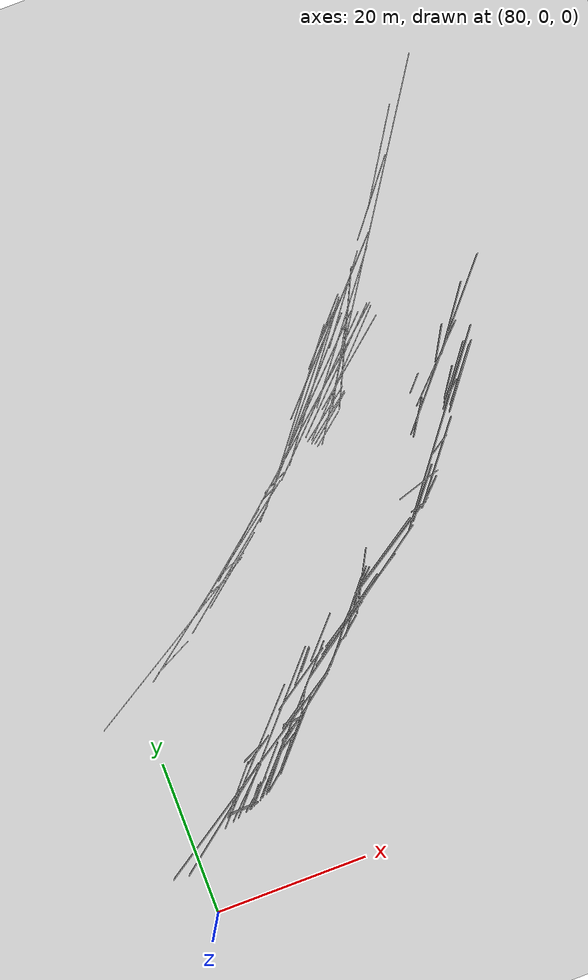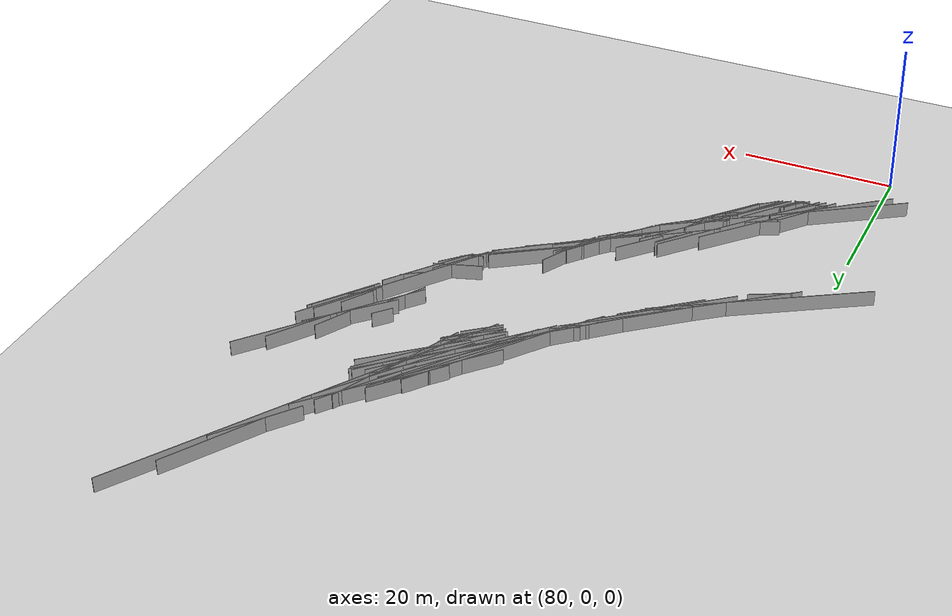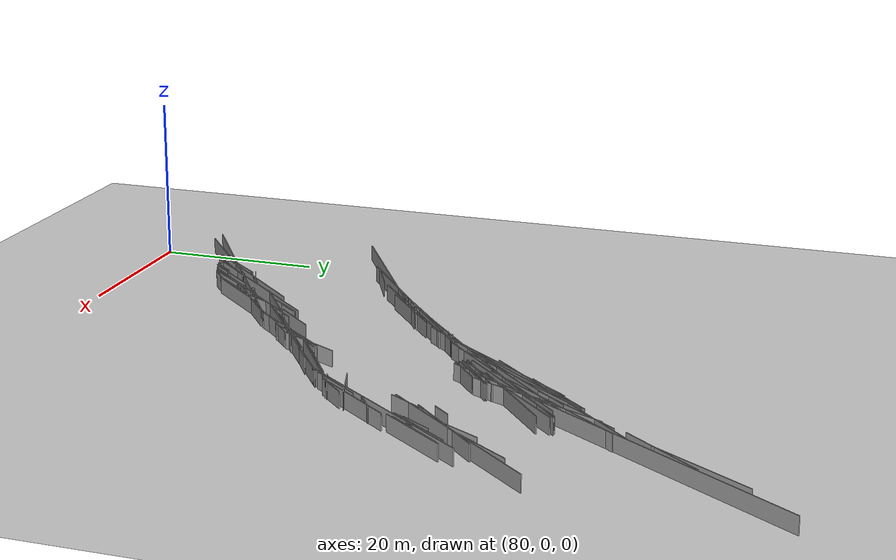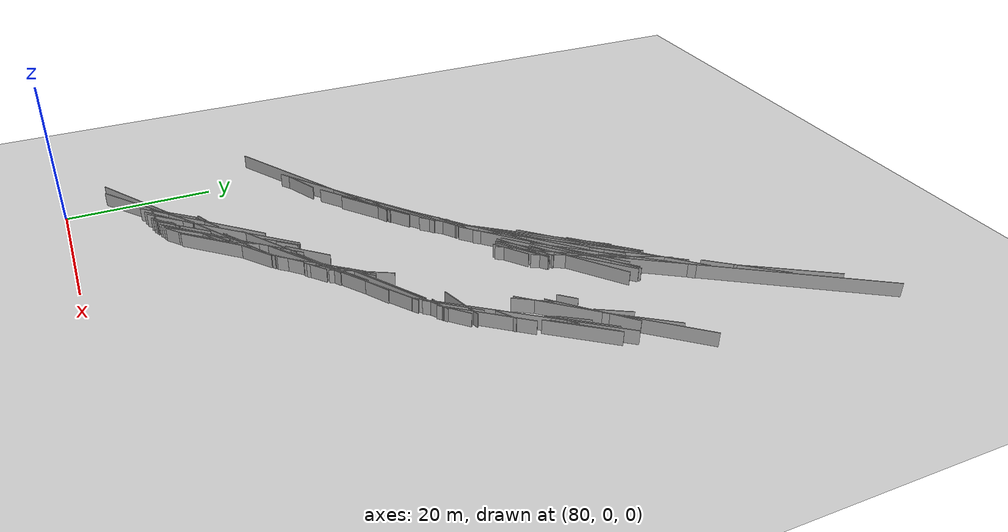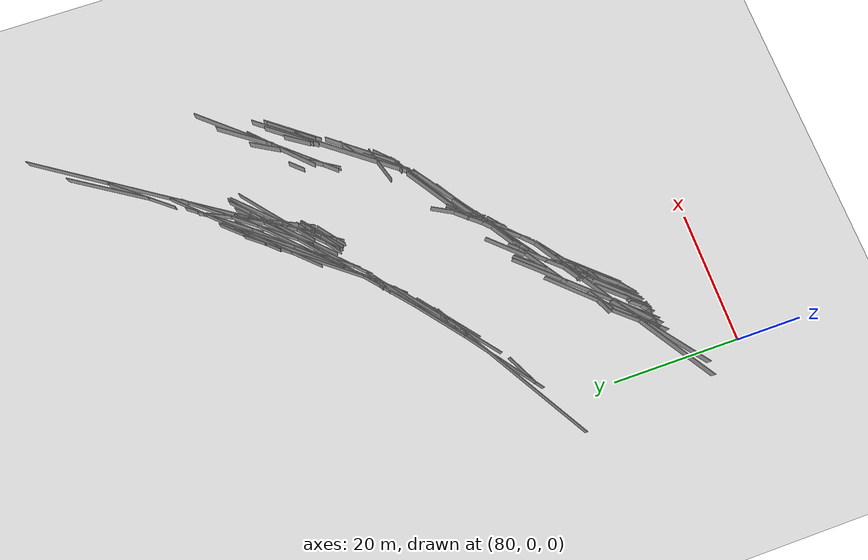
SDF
<sdf version="1.6">
 <world name="slam_world">
  <model name="ground_plane">
   <static>true</static>
   <link name="link">
    <collision name="collision">
     <geometry><plane><normal>0 0 1</normal><size>100 100</size></plane></geometry>
    </collision>
    <visual name="visual">
     <geometry><plane><normal>0 0 1</normal><size>100 100</size></plane></geometry>
     <material>
      <ambient>0.8 0.8 0.8 1</ambient>
      <diffuse>0.8 0.8 0.8 1</diffuse>
      <specular>0.8 0.8 0.8 1</specular>
     </material>
    </visual>
   </link>
  </model>
  <model name="wall_5">
   <static>true</static>
   <pose>90.2 15.0 1.0 0 0 0.5746030705476067</pose>
   <link name="link">
    <collision name="collision">
     <geometry><box><size>33.118574848564975 0.1 2.0</size></box></geometry>
    </collision>
    <visual name="visual">
     <geometry><box><size>33.118574848564975 0.1 2.0</size></box></geometry>
     <material><ambient>0.5 0.5 0.5 1</ambient><diffuse>0.7 0.7 0.7 1</diffuse></material>
    </visual>
   </link>
  </model>
  <model name="wall_13">
   <static>true</static>
   <pose>84.9 10.900000000000006 1.0 0 0 0.6578886051822088</pose>
   <link name="link">
    <collision name="collision"><geometry><box><size>16.68172652934942 0.1 2.0</size></box></geometry></collision>
    <visual name="visual">
     <geometry><box><size>16.68172652934942 0.1 2.0</size></box></geometry>
     <material><ambient>0.5 0.5 0.5 1</ambient><diffuse>0.7 0.7 0.7 1</diffuse></material>
    </visual>
   </link>
  </model>
  <model name="wall_15">
   <static>true</static>
   <pose>110.10000000000001 52.60000000000001 1.0 0 0 0.7150916992788243</pose>
   <link name="link">
    <collision name="collision"><geometry><box><size>40.26313450291717 0.1 2.0</size></box></geometry></collision>
    <visual name="visual">
     <geometry><box><size>40.26313450291717 0.1 2.0</size></box></geometry>
     <material><ambient>0.5 0.5 0.5 1</ambient><diffuse>0.7 0.7 0.7 1</diffuse></material>
    </visual>
   </link>
  </model>
  <model name="wall_18">
   <static>true</static>
   <pose>128.0 47.70000000000002 1.0 0 0 0.919996077557915</pose>
   <link name="link">
    <collision name="collision">
     <geometry><box><size>27.400729917285066 0.1 2.0</size></box></geometry>
    </collision>
    <visual name="visual">
     <geometry><box><size>27.400729917285066 0.1 2.0</size></box></geometry>
     <material><ambient>0.5 0.5 0.5 1</ambient><diffuse>0.7 0.7 0.7 1</diffuse></material>
    </visual>
   </link>
  </model>
  <model name="wall_49">
   <static>true</static>
   <pose>115.20000000000002 56.90000000000002 1.0 0 0 0.7853981633974483</pose>
   <link name="link">
    <collision name="collision"><geometry><box><size>23.47594513539337 0.1 2.0</size></box></geometry></collision>
    <visual name="visual">
     <geometry><box><size>23.47594513539337 0.1 2.0</size></box></geometry>
     <material><ambient>0.5 0.5 0.5 1</ambient><diffuse>0.7 0.7 0.7 1</diffuse></material>
    </visual>
   </link>
  </model>
  <model name="wall_51">
   <static>true</static>
   <pose>110.9 30.60000000000001 1.0 0 0 0.6162969373960707</pose>
   <link name="link">
    <collision name="collision">
     <geometry><box><size>23.528705871764398 0.1 2.0</size></box></geometry>
    </collision>
    <visual name="visual">
     <geometry><box><size>23.528705871764398 0.1 2.0</size></box></geometry>
     <material><ambient>0.5 0.5 0.5 1</ambient><diffuse>0.7 0.7 0.7 1</diffuse></material>
    </visual>
   </link>
  </model>
  <model name="wall_62">
   <static>true</static>
   <pose>112.00000000000001 55.20000000000002 1.0 0 0 0.8400699948165983</pose>
   <link name="link">
    <collision name="collision">
     <geometry><box><size>28.468227904103895 0.1 2.0</size></box></geometry>
    </collision>
    <visual name="visual">
     <geometry><box><size>28.468227904103895 0.1 2.0</size></box></geometry>
     <material><ambient>0.5 0.5 0.5 1</ambient><diffuse>0.7 0.7 0.7 1</diffuse></material>
    </visual>
   </link>
  </model>
  <model name="wall_65">
   <static>true</static>
   <pose>126.20000000000002 43.90000000000002 1.0 0 0 0.903888122555585</pose>
   <link name="link">
    <collision name="collision">
     <geometry><box><size>11.963277142990561 0.1 2.0</size></box></geometry>
    </collision>
    <visual name="visual">
     <geometry><box><size>11.963277142990561 0.1 2.0</size></box></geometry>
     <material><ambient>0.5 0.5 0.5 1</ambient><diffuse>0.7 0.7 0.7 1</diffuse></material>
    </visual>
   </link>
  </model>
  <model name="wall_71">
   <static>true</static>
   <pose>86.10000000000001 32.40000000000002 1.0 0 0 0.4636476090008061</pose>
   <link name="link">
    <collision name="collision"><geometry><box><size>5.366563145999508 0.1 2.0</size></box></geometry></collision>
    <visual name="visual">
     <geometry><box><size>5.366563145999508 0.1 2.0</size></box></geometry>
     <material><ambient>0.5 0.5 0.5 1</ambient><diffuse>0.7 0.7 0.7 1</diffuse></material>
    </visual>
   </link>
  </model>
  <model name="wall_73">
   <static>true</static>
   <pose>120.9 64.10000000000002 1.0 0 0 0.9105681536887845</pose>
   <link name="link">
    <collision name="collision">
     <geometry><box><size>21.523010941780438 0.1 2.0</size></box></geometry>
    </collision>
    <visual name="visual">
     <geometry><box><size>21.523010941780438 0.1 2.0</size></box></geometry>
     <material><ambient>0.5 0.5 0.5 1</ambient><diffuse>0.7 0.7 0.7 1</diffuse></material>
    </visual>
   </link>
  </model>
  <model name="wall_82">
   <static>true</static>
   <pose>110.4 31.30000000000001 1.0 0 0 0.7853981633974461</pose>
   <link name="link">
    <collision name="collision"><geometry><box><size>8.768124086713193 0.1 2.0</size></box></geometry></collision>
    <visual name="visual">
     <geometry><box><size>8.768124086713193 0.1 2.0</size></box></geometry>
     <material><ambient>0.5 0.5 0.5 1</ambient><diffuse>0.7 0.7 0.7 1</diffuse></material>
    </visual>
   </link>
  </model>
  <model name="wall_103">
   <static>true</static>
   <pose>130.5 55.60000000000001 1.0 0 0 0.7853981633974492</pose>
   <link name="link">
    <collision name="collision">
     <geometry><box><size>11.879393923933996 0.1 2.0</size></box></geometry>
    </collision>
    <visual name="visual">
     <geometry><box><size>11.879393923933996 0.1 2.0</size></box></geometry>
     <material><ambient>0.5 0.5 0.5 1</ambient><diffuse>0.7 0.7 0.7 1</diffuse></material>
    </visual>
   </link>
  </model>
  <model name="wall_136">
   <static>true</static>
   <pose>95.8 17.10000000000001 1.0 0 0 0.5404195002705799</pose>
   <link name="link">
    <collision name="collision">
     <geometry><box><size>3.4985711369071715 0.1 2.0</size></box></geometry>
    </collision>
    <visual name="visual">
     <geometry><box><size>3.4985711369071715 0.1 2.0</size></box></geometry>
     <material><ambient>0.5 0.5 0.5 1</ambient><diffuse>0.7 0.7 0.7 1</diffuse></material>
    </visual>
   </link>
  </model>
  <model name="wall_150">
   <static>true</static>
   <pose>123.9 40.60000000000001 1.0 0 0 0.7853981633974483</pose>
   <link name="link">
    <collision name="collision"><geometry><box><size>4.525483399593928 0.1 2.0</size></box></geometry></collision>
    <visual name="visual">
     <geometry><box><size>4.525483399593928 0.1 2.0</size></box></geometry>
     <material><ambient>0.5 0.5 0.5 1</ambient><diffuse>0.7 0.7 0.7 1</diffuse></material>
    </visual>
   </link>
  </model>
  <model name="wall_154">
   <static>true</static>
   <pose>105.00000000000001 25.10000000000001 1.0 0 0 0.7853981633974446</pose>
   <link name="link">
    <collision name="collision"><geometry><box><size>5.374011537017757 0.1 2.0</size></box></geometry></collision>
    <visual name="visual">
     <geometry><box><size>5.374011537017757 0.1 2.0</size></box></geometry>
     <material><ambient>0.5 0.5 0.5 1</ambient><diffuse>0.7 0.7 0.7 1</diffuse></material>
    </visual>
   </link>
  </model>
  <model name="wall_161">
   <static>true</static>
   <pose>109.00000000000001 29.60000000000001 1.0 0 0 0.6146629519221671</pose>
   <link name="link">
    <collision name="collision">
     <geometry><box><size>12.485191228010887 0.1 2.0</size></box></geometry>
    </collision>
    <visual name="visual">
     <geometry><box><size>12.485191228010887 0.1 2.0</size></box></geometry>
     <material><ambient>0.5 0.5 0.5 1</ambient><diffuse>0.7 0.7 0.7 1</diffuse></material>
    </visual>
   </link>
  </model>
  <model name="wall_165">
   <static>true</static>
   <pose>97.50000000000001 19.5 1.0 0 0 0.071307464785286</pose>
   <link name="link">
    <collision name="collision">
     <geometry><box><size>2.8071337695236505 0.1 2.0</size></box></geometry>
    </collision>
    <visual name="visual">
     <geometry><box><size>2.8071337695236505 0.1 2.0</size></box></geometry>
     <material><ambient>0.5 0.5 0.5 1</ambient><diffuse>0.7 0.7 0.7 1</diffuse></material>
    </visual>
   </link>
  </model>
  <model name="wall_172">
   <static>true</static>
   <pose>127.20000000000002 72.30000000000001 1.0 0 0 0.992608020997409</pose>
   <link name="link">
    <collision name="collision"><geometry><box><size>50.86845781031703 0.1 2.0</size></box></geometry></collision>
    <visual name="visual">
     <geometry><box><size>50.86845781031703 0.1 2.0</size></box></geometry>
     <material><ambient>0.5 0.5 0.5 1</ambient><diffuse>0.7 0.7 0.7 1</diffuse></material>
    </visual>
   </link>
  </model>
  <model name="wall_179">
   <static>true</static>
   <pose>115.2 54.000000000000014 1.0 0 0 0.6588060361174755</pose>
   <link name="link">
    <collision name="collision">
     <geometry><box><size>7.8409183135650435 0.1 2.0</size></box></geometry>
    </collision>
    <visual name="visual">
     <geometry><box><size>7.8409183135650435 0.1 2.0</size></box></geometry>
     <material><ambient>0.5 0.5 0.5 1</ambient><diffuse>0.7 0.7 0.7 1</diffuse></material>
    </visual>
   </link>
  </model>
  <model name="wall_181">
   <static>true</static>
   <pose>100.3 24.10000000000001 1.0 0 0 0.5937496667107716</pose>
   <link name="link">
    <collision name="collision"><geometry><box><size>9.651942809610926 0.1 2.0</size></box></geometry></collision>
    <visual name="visual">
     <geometry><box><size>9.651942809610926 0.1 2.0</size></box></geometry>
     <material><ambient>0.5 0.5 0.5 1</ambient><diffuse>0.7 0.7 0.7 1</diffuse></material>
    </visual>
   </link>
  </model>
  <model name="wall_200">
   <static>true</static>
   <pose>132.8 53.2 1.0 0 0 0.9075933340888038</pose>
   <link name="link">
    <collision name="collision"><geometry><box><size>8.121576201698785 0.1 2.0</size></box></geometry></collision>
    <visual name="visual">
     <geometry><box><size>8.121576201698785 0.1 2.0</size></box></geometry>
     <material><ambient>0.5 0.5 0.5 1</ambient><diffuse>0.7 0.7 0.7 1</diffuse></material>
    </visual>
   </link>
  </model>
  <model name="wall_214">
   <static>true</static>
   <pose>120.20000000000002 59.60000000000001 1.0 0 0 0.6928795422778008</pose>
   <link name="link">
    <collision name="collision">
     <geometry><box><size>13.776792079435603 0.1 2.0</size></box></geometry>
    </collision>
    <visual name="visual">
     <geometry><box><size>13.776792079435603 0.1 2.0</size></box></geometry>
     <material><ambient>0.5 0.5 0.5 1</ambient><diffuse>0.7 0.7 0.7 1</diffuse></material>
    </visual>
   </link>
  </model>
  <model name="wall_247">
   <static>true</static>
   <pose>131.70000000000002 57.900000000000006 1.0 0 0 1.0516502125483664</pose>
   <link name="link">
    <collision name="collision"><geometry><box><size>4.837354648979137 0.1 2.0</size></box></geometry></collision>
    <visual name="visual">
     <geometry><box><size>4.837354648979137 0.1 2.0</size></box></geometry>
     <material><ambient>0.5 0.5 0.5 1</ambient><diffuse>0.7 0.7 0.7 1</diffuse></material>
    </visual>
   </link>
  </model>
  <model name="wall_249">
   <static>true</static>
   <pose>119.5 64.80000000000001 1.0 0 0 0.8183532610117465</pose>
   <link name="link">
    <collision name="collision">
     <geometry><box><size>25.752669764511808 0.1 2.0</size></box></geometry>
    </collision>
    <visual name="visual">
     <geometry><box><size>25.752669764511808 0.1 2.0</size></box></geometry>
     <material><ambient>0.5 0.5 0.5 1</ambient><diffuse>0.7 0.7 0.7 1</diffuse></material>
    </visual>
   </link>
  </model>
  <model name="wall_254">
   <static>true</static>
   <pose>96.80000000000001 40.30000000000001 1.0 0 0 0.6797325812975932</pose>
   <link name="link">
    <collision name="collision">
     <geometry><box><size>18.772320048411707 0.1 2.0</size></box></geometry>
    </collision>
    <visual name="visual">
     <geometry><box><size>18.772320048411707 0.1 2.0</size></box></geometry>
     <material><ambient>0.5 0.5 0.5 1</ambient><diffuse>0.7 0.7 0.7 1</diffuse></material>
    </visual>
   </link>
  </model>
  <model name="wall_260">
   <static>true</static>
   <pose>110.30000000000001 30.90000000000002 1.0 0 0 0.9229848998677991</pose>
   <link name="link">
    <collision name="collision"><geometry><box><size>9.280086206496145 0.1 2.0</size></box></geometry></collision>
    <visual name="visual">
     <geometry><box><size>9.280086206496145 0.1 2.0</size></box></geometry>
     <material><ambient>0.5 0.5 0.5 1</ambient><diffuse>0.7 0.7 0.7 1</diffuse></material>
    </visual>
   </link>
  </model>
  <model name="wall_269">
   <static>true</static>
   <pose>115.50000000000001 35.10000000000001 1.0 0 0 0.5833730069938555</pose>
   <link name="link">
    <collision name="collision">
     <geometry><box><size>11.981652640600124 0.1 2.0</size></box></geometry>
    </collision>
    <visual name="visual">
     <geometry><box><size>11.981652640600124 0.1 2.0</size></box></geometry>
     <material><ambient>0.5 0.5 0.5 1</ambient><diffuse>0.7 0.7 0.7 1</diffuse></material>
    </visual>
   </link>
  </model>
  <model name="wall_285">
   <static>true</static>
   <pose>122.30000000000001 67.30000000000001 1.0 0 0 0.9304398617240537</pose>
   <link name="link">
    <collision name="collision">
     <geometry><box><size>12.720062892926263 0.1 2.0</size></box></geometry>
    </collision>
    <visual name="visual">
     <geometry><box><size>12.720062892926263 0.1 2.0</size></box></geometry>
     <material><ambient>0.5 0.5 0.5 1</ambient><diffuse>0.7 0.7 0.7 1</diffuse></material>
    </visual>
   </link>
  </model>
  <model name="wall_292">
   <static>true</static>
   <pose>86.7 34.000000000000014 1.0 0 0 0.5404195002705843</pose>
   <link name="link">
    <collision name="collision">
     <geometry><box><size>27.988569095257443 0.1 2.0</size></box></geometry>
    </collision>
    <visual name="visual">
     <geometry><box><size>27.988569095257443 0.1 2.0</size></box></geometry>
     <material><ambient>0.5 0.5 0.5 1</ambient><diffuse>0.7 0.7 0.7 1</diffuse></material>
    </visual>
   </link>
  </model>
  <model name="wall_294">
   <static>true</static>
   <pose>132.3 57.500000000000014 1.0 0 0 0.8604017099145254</pose>
   <link name="link">
    <collision name="collision">
     <geometry><box><size>24.534873140083693 0.1 2.0</size></box></geometry>
    </collision>
    <visual name="visual">
     <geometry><box><size>24.534873140083693 0.1 2.0</size></box></geometry>
     <material><ambient>0.5 0.5 0.5 1</ambient><diffuse>0.7 0.7 0.7 1</diffuse></material>
    </visual>
   </link>
  </model>
  <model name="wall_332">
   <static>true</static>
   <pose>111.90000000000002 33.10000000000001 1.0 0 0 1.0752446533090685</pose>
   <link name="link">
    <collision name="collision"><geometry><box><size>8.41189633792524 0.1 2.0</size></box></geometry></collision>
    <visual name="visual">
     <geometry><box><size>8.41189633792524 0.1 2.0</size></box></geometry>
     <material><ambient>0.5 0.5 0.5 1</ambient><diffuse>0.7 0.7 0.7 1</diffuse></material>
    </visual>
   </link>
  </model>
  <model name="wall_336">
   <static>true</static>
   <pose>115.4 53.80000000000001 1.0 0 0 0.6913369287694646</pose>
   <link name="link">
    <collision name="collision"><geometry><box><size>7.528612089887479 0.1 2.0</size></box></geometry></collision>
    <visual name="visual">
     <geometry><box><size>7.528612089887479 0.1 2.0</size></box></geometry>
     <material><ambient>0.5 0.5 0.5 1</ambient><diffuse>0.7 0.7 0.7 1</diffuse></material>
    </visual>
   </link>
  </model>
  <model name="wall_338">
   <static>true</static>
   <pose>122.00000000000001 39.30000000000001 1.0 0 0 0.2662520491509363</pose>
   <link name="link">
    <collision name="collision">
     <geometry><box><size>2.2803508501982708 0.1 2.0</size></box></geometry>
    </collision>
    <visual name="visual">
     <geometry><box><size>2.2803508501982708 0.1 2.0</size></box></geometry>
     <material><ambient>0.5 0.5 0.5 1</ambient><diffuse>0.7 0.7 0.7 1</diffuse></material>
    </visual>
   </link>
  </model>
  <model name="wall_345">
   <static>true</static>
   <pose>97.60000000000001 19.700000000000017 1.0 0 0 0.8386810149571414</pose>
   <link name="link">
    <collision name="collision"><geometry><box><size>21.24335190124195 0.1 2.0</size></box></geometry></collision>
    <visual name="visual">
     <geometry><box><size>21.24335190124195 0.1 2.0</size></box></geometry>
     <material><ambient>0.5 0.5 0.5 1</ambient><diffuse>0.7 0.7 0.7 1</diffuse></material>
    </visual>
   </link>
  </model>
  <model name="wall_350">
   <static>true</static>
   <pose>112.00000000000001 56.30000000000001 1.0 0 0 0.9113107890832465</pose>
   <link name="link">
    <collision name="collision">
     <geometry><box><size>22.522877258467684 0.1 2.0</size></box></geometry>
    </collision>
    <visual name="visual">
     <geometry><box><size>22.522877258467684 0.1 2.0</size></box></geometry>
     <material><ambient>0.5 0.5 0.5 1</ambient><diffuse>0.7 0.7 0.7 1</diffuse></material>
    </visual>
   </link>
  </model>
  <model name="wall_354">
   <static>true</static>
   <pose>97.2 17.700000000000003 1.0 0 0 0.8393996637734156</pose>
   <link name="link">
    <collision name="collision"><geometry><box><size>10.48045800525911 0.1 2.0</size></box></geometry></collision>
    <visual name="visual">
     <geometry><box><size>10.48045800525911 0.1 2.0</size></box></geometry>
     <material><ambient>0.5 0.5 0.5 1</ambient><diffuse>0.7 0.7 0.7 1</diffuse></material>
    </visual>
   </link>
  </model>
  <model name="wall_366">
   <static>true</static>
   <pose>115.10000000000001 58.7 1.0 0 0 0.9218007677983963</pose>
   <link name="link">
    <collision name="collision"><geometry><box><size>21.84032966784155 0.1 2.0</size></box></geometry></collision>
    <visual name="visual">
     <geometry><box><size>21.84032966784155 0.1 2.0</size></box></geometry>
     <material><ambient>0.5 0.5 0.5 1</ambient><diffuse>0.7 0.7 0.7 1</diffuse></material>
    </visual>
   </link>
  </model>
  <model name="wall_368">
   <static>true</static>
   <pose>97.70000000000002 20.200000000000003 1.0 0 0 0.5880026035475694</pose>
   <link name="link">
    <collision name="collision"><geometry><box><size>4.326661530556786 0.1 2.0</size></box></geometry></collision>
    <visual name="visual">
     <geometry><box><size>4.326661530556786 0.1 2.0</size></box></geometry>
     <material><ambient>0.5 0.5 0.5 1</ambient><diffuse>0.7 0.7 0.7 1</diffuse></material>
    </visual>
   </link>
  </model>
  <model name="wall_395">
   <static>true</static>
   <pose>132.9 82.7 1.0 0 0 1.0074800653029294</pose>
   <link name="link">
    <collision name="collision">
     <geometry><box><size>13.483323032546538 0.1 2.0</size></box></geometry>
    </collision>
    <visual name="visual">
     <geometry><box><size>13.483323032546538 0.1 2.0</size></box></geometry>
     <material><ambient>0.5 0.5 0.5 1</ambient><diffuse>0.7 0.7 0.7 1</diffuse></material>
    </visual>
   </link>
  </model>
  <model name="wall_409">
   <static>true</static>
   <pose>92.1 17.60000000000001 1.0 0 0 0.5880026035475694</pose>
   <link name="link">
    <collision name="collision"><geometry><box><size>4.326661530556786 0.1 2.0</size></box></geometry></collision>
    <visual name="visual">
     <geometry><box><size>4.326661530556786 0.1 2.0</size></box></geometry>
     <material><ambient>0.5 0.5 0.5 1</ambient><diffuse>0.7 0.7 0.7 1</diffuse></material>
    </visual>
   </link>
  </model>
  <model name="wall_410">
   <static>true</static>
   <pose>93.10000000000001 14.900000000000006 1.0 0 0 0.8329812666744334</pose>
   <link name="link">
    <collision name="collision"><geometry><box><size>8.91964124839112 0.1 2.0</size></box></geometry></collision>
    <visual name="visual">
     <geometry><box><size>8.91964124839112 0.1 2.0</size></box></geometry>
     <material><ambient>0.5 0.5 0.5 1</ambient><diffuse>0.7 0.7 0.7 1</diffuse></material>
    </visual>
   </link>
  </model>
  <model name="wall_416">
   <static>true</static>
   <pose>125.9 50.000000000000014 1.0 0 0 1.0040671092713935</pose>
   <link name="link">
    <collision name="collision">
     <geometry><box><size>5.2153619241621145 0.1 2.0</size></box></geometry>
    </collision>
    <visual name="visual">
     <geometry><box><size>5.2153619241621145 0.1 2.0</size></box></geometry>
     <material><ambient>0.5 0.5 0.5 1</ambient><diffuse>0.7 0.7 0.7 1</diffuse></material>
    </visual>
   </link>
  </model>
  <model name="wall_423">
   <static>true</static>
   <pose>97.2 40.80000000000001 1.0 0 0 0.39852244566642425</pose>
   <link name="link">
    <collision name="collision"><geometry><box><size>4.12310562561768 0.1 2.0</size></box></geometry></collision>
    <visual name="visual">
     <geometry><box><size>4.12310562561768 0.1 2.0</size></box></geometry>
     <material><ambient>0.5 0.5 0.5 1</ambient><diffuse>0.7 0.7 0.7 1</diffuse></material>
    </visual>
   </link>
  </model>
  <model name="wall_463">
   <static>true</static>
   <pose>110.9 30.80000000000001 1.0 0 0 0.572966142888706</pose>
   <link name="link">
    <collision name="collision">
     <geometry><box><size>14.756693396557377 0.1 2.0</size></box></geometry>
    </collision>
    <visual name="visual">
     <geometry><box><size>14.756693396557377 0.1 2.0</size></box></geometry>
     <material><ambient>0.5 0.5 0.5 1</ambient><diffuse>0.7 0.7 0.7 1</diffuse></material>
    </visual>
   </link>
  </model>
  <model name="wall_471">
   <static>true</static>
   <pose>101.0 25.600000000000023 1.0 0 0 0.8663022625526781</pose>
   <link name="link">
    <collision name="collision"><geometry><box><size>5.249761899362679 0.1 2.0</size></box></geometry></collision>
    <visual name="visual">
     <geometry><box><size>5.249761899362679 0.1 2.0</size></box></geometry>
     <material><ambient>0.5 0.5 0.5 1</ambient><diffuse>0.7 0.7 0.7 1</diffuse></material>
    </visual>
   </link>
  </model>
  <model name="wall_472">
   <static>true</static>
   <pose>115.30000000000001 58.20000000000002 1.0 0 0 0.7853981633974493</pose>
   <link name="link">
    <collision name="collision"><geometry><box><size>20.9303607231218 0.1 2.0</size></box></geometry></collision>
    <visual name="visual">
     <geometry><box><size>20.9303607231218 0.1 2.0</size></box></geometry>
     <material><ambient>0.5 0.5 0.5 1</ambient><diffuse>0.7 0.7 0.7 1</diffuse></material>
    </visual>
   </link>
  </model>
  <model name="wall_474">
   <static>true</static>
   <pose>131.10000000000002 52.80000000000001 1.0 0 0 0.9827937232473364</pose>
   <link name="link">
    <collision name="collision"><geometry><box><size>4.326661530556794 0.1 2.0</size></box></geometry></collision>
    <visual name="visual">
     <geometry><box><size>4.326661530556794 0.1 2.0</size></box></geometry>
     <material><ambient>0.5 0.5 0.5 1</ambient><diffuse>0.7 0.7 0.7 1</diffuse></material>
    </visual>
   </link>
  </model>
  <model name="wall_485">
   <static>true</static>
   <pose>94.5 19.10000000000001 1.0 0 0 0.8398896196381799</pose>
   <link name="link">
    <collision name="collision">
     <geometry><box><size>23.369210512980537 0.1 2.0</size></box></geometry>
    </collision>
    <visual name="visual">
     <geometry><box><size>23.369210512980537 0.1 2.0</size></box></geometry>
     <material><ambient>0.5 0.5 0.5 1</ambient><diffuse>0.7 0.7 0.7 1</diffuse></material>
    </visual>
   </link>
  </model>
  <model name="wall_493">
   <static>true</static>
   <pose>104.5 28.200000000000017 1.0 0 0 0.8288490587889796</pose>
   <link name="link">
    <collision name="collision"><geometry><box><size>6.511528238439895 0.1 2.0</size></box></geometry></collision>
    <visual name="visual">
     <geometry><box><size>6.511528238439895 0.1 2.0</size></box></geometry>
     <material><ambient>0.5 0.5 0.5 1</ambient><diffuse>0.7 0.7 0.7 1</diffuse></material>
    </visual>
   </link>
  </model>
  <model name="wall_499">
   <static>true</static>
   <pose>132.8 53.000000000000014 1.0 0 0 0.9189272124893232</pose>
   <link name="link">
    <collision name="collision"><geometry><box><size>9.560334722173664 0.1 2.0</size></box></geometry></collision>
    <visual name="visual">
     <geometry><box><size>9.560334722173664 0.1 2.0</size></box></geometry>
     <material><ambient>0.5 0.5 0.5 1</ambient><diffuse>0.7 0.7 0.7 1</diffuse></material>
    </visual>
   </link>
  </model>
  <model name="wall_507">
   <static>true</static>
   <pose>89.50000000000001 12.200000000000003 1.0 0 0 0.8760580505981945</pose>
   <link name="link">
    <collision name="collision"><geometry><box><size>3.124099870362666 0.1 2.0</size></box></geometry></collision>
    <visual name="visual">
     <geometry><box><size>3.124099870362666 0.1 2.0</size></box></geometry>
     <material><ambient>0.5 0.5 0.5 1</ambient><diffuse>0.7 0.7 0.7 1</diffuse></material>
    </visual>
   </link>
  </model>
  <model name="wall_511">
   <static>true</static>
   <pose>106.9 27.80000000000001 1.0 0 0 0.5880026035475692</pose>
   <link name="link">
    <collision name="collision">
     <geometry><box><size>10.095543571299189 0.1 2.0</size></box></geometry>
    </collision>
    <visual name="visual">
     <geometry><box><size>10.095543571299189 0.1 2.0</size></box></geometry>
     <material><ambient>0.5 0.5 0.5 1</ambient><diffuse>0.7 0.7 0.7 1</diffuse></material>
    </visual>
   </link>
  </model>
  <model name="wall_520">
   <static>true</static>
   <pose>123.00000000000001 41.900000000000006 1.0 0 0 0.30092023436042636</pose>
   <link name="link">
    <collision name="collision"><geometry><box><size>6.072890580275605 0.1 2.0</size></box></geometry></collision>
    <visual name="visual">
     <geometry><box><size>6.072890580275605 0.1 2.0</size></box></geometry>
     <material><ambient>0.5 0.5 0.5 1</ambient><diffuse>0.7 0.7 0.7 1</diffuse></material>
    </visual>
   </link>
  </model>
  <model name="wall_540">
   <static>true</static>
   <pose>92.7 13.200000000000017 1.0 0 0 0.6947382761967078</pose>
   <link name="link">
    <collision name="collision">
     <geometry><box><size>3.1240998703626444 0.1 2.0</size></box></geometry>
    </collision>
    <visual name="visual">
     <geometry><box><size>3.1240998703626444 0.1 2.0</size></box></geometry>
     <material><ambient>0.5 0.5 0.5 1</ambient><diffuse>0.7 0.7 0.7 1</diffuse></material>
    </visual>
   </link>
  </model>
  <model name="wall_590">
   <static>true</static>
   <pose>97.0 40.10000000000002 1.0 0 0 0.683191445290195</pose>
   <link name="link">
    <collision name="collision">
     <geometry><box><size>11.088733020503286 0.1 2.0</size></box></geometry>
    </collision>
    <visual name="visual">
     <geometry><box><size>11.088733020503286 0.1 2.0</size></box></geometry>
     <material><ambient>0.5 0.5 0.5 1</ambient><diffuse>0.7 0.7 0.7 1</diffuse></material>
    </visual>
   </link>
  </model>
  <model name="wall_648">
   <static>true</static>
   <pose>99.4 20.30000000000001 1.0 0 0 0.6545707673233934</pose>
   <link name="link">
    <collision name="collision">
     <geometry><box><size>10.840664186294132 0.1 2.0</size></box></geometry>
    </collision>
    <visual name="visual">
     <geometry><box><size>10.840664186294132 0.1 2.0</size></box></geometry>
     <material><ambient>0.5 0.5 0.5 1</ambient><diffuse>0.7 0.7 0.7 1</diffuse></material>
    </visual>
   </link>
  </model>
  <model name="wall_655">
   <static>true</static>
   <pose>97.10000000000001 41.500000000000014 1.0 0 0 0.6810170104471173</pose>
   <link name="link">
    <collision name="collision">
     <geometry><box><size>14.930505684671255 0.1 2.0</size></box></geometry>
    </collision>
    <visual name="visual">
     <geometry><box><size>14.930505684671255 0.1 2.0</size></box></geometry>
     <material><ambient>0.5 0.5 0.5 1</ambient><diffuse>0.7 0.7 0.7 1</diffuse></material>
    </visual>
   </link>
  </model>
  <model name="wall_657">
   <static>true</static>
   <pose>123.10000000000001 40.80000000000001 1.0 0 0 0.8960553845713428</pose>
   <link name="link">
    <collision name="collision"><geometry><box><size>7.683749084919425 0.1 2.0</size></box></geometry></collision>
    <visual name="visual">
     <geometry><box><size>7.683749084919425 0.1 2.0</size></box></geometry>
     <material><ambient>0.5 0.5 0.5 1</ambient><diffuse>0.7 0.7 0.7 1</diffuse></material>
    </visual>
   </link>
  </model>
  <model name="wall_662">
   <static>true</static>
   <pose>118.60000000000001 64.30000000000001 1.0 0 0 0.7853981633974483</pose>
   <link name="link">
    <collision name="collision"><geometry><box><size>5.374011537017777 0.1 2.0</size></box></geometry></collision>
    <visual name="visual">
     <geometry><box><size>5.374011537017777 0.1 2.0</size></box></geometry>
     <material><ambient>0.5 0.5 0.5 1</ambient><diffuse>0.7 0.7 0.7 1</diffuse></material>
    </visual>
   </link>
  </model>
  <model name="wall_673">
   <static>true</static>
   <pose>96.7 17.400000000000006 1.0 0 0 0.8441539861131759</pose>
   <link name="link">
    <collision name="collision"><geometry><box><size>4.816637831516927 0.1 2.0</size></box></geometry></collision>
    <visual name="visual">
     <geometry><box><size>4.816637831516927 0.1 2.0</size></box></geometry>
     <material><ambient>0.5 0.5 0.5 1</ambient><diffuse>0.7 0.7 0.7 1</diffuse></material>
    </visual>
   </link>
  </model>
  <model name="wall_696">
   <static>true</static>
   <pose>91.4 17.000000000000014 1.0 0 0 0.8213538837180479</pose>
   <link name="link">
    <collision name="collision">
     <geometry><box><size>19.670282153543205 0.1 2.0</size></box></geometry>
    </collision>
    <visual name="visual">
     <geometry><box><size>19.670282153543205 0.1 2.0</size></box></geometry>
     <material><ambient>0.5 0.5 0.5 1</ambient><diffuse>0.7 0.7 0.7 1</diffuse></material>
    </visual>
   </link>
  </model>
  <model name="wall_701">
   <static>true</static>
   <pose>120.80000000000001 62.60000000000001 1.0 0 0 1.1268506017069004</pose>
   <link name="link">
    <collision name="collision">
     <geometry><box><size>18.160396471443015 0.1 2.0</size></box></geometry>
    </collision>
    <visual name="visual">
     <geometry><box><size>18.160396471443015 0.1 2.0</size></box></geometry>
     <material><ambient>0.5 0.5 0.5 1</ambient><diffuse>0.7 0.7 0.7 1</diffuse></material>
    </visual>
   </link>
  </model>
  <model name="wall_720">
   <static>true</static>
   <pose>134.3 60.30000000000001 1.0 0 0 0.9481255380378281</pose>
   <link name="link">
    <collision name="collision"><geometry><box><size>9.602083107326266 0.1 2.0</size></box></geometry></collision>
    <visual name="visual">
     <geometry><box><size>9.602083107326266 0.1 2.0</size></box></geometry>
     <material><ambient>0.5 0.5 0.5 1</ambient><diffuse>0.7 0.7 0.7 1</diffuse></material>
    </visual>
   </link>
  </model>
  <model name="wall_733">
   <static>true</static>
   <pose>118.30000000000001 59.20000000000002 1.0 0 0 0.7853981633974473</pose>
   <link name="link">
    <collision name="collision">
     <geometry><box><size>18.667619023324857 0.1 2.0</size></box></geometry>
    </collision>
    <visual name="visual">
     <geometry><box><size>18.667619023324857 0.1 2.0</size></box></geometry>
     <material><ambient>0.5 0.5 0.5 1</ambient><diffuse>0.7 0.7 0.7 1</diffuse></material>
    </visual>
   </link>
  </model>
  <model name="wall_741">
   <static>true</static>
   <pose>117.10000000000001 35.900000000000006 1.0 0 0 0.5697564534829774</pose>
   <link name="link">
    <collision name="collision">
     <geometry><box><size>15.201315732527895 0.1 2.0</size></box></geometry>
    </collision>
    <visual name="visual">
     <geometry><box><size>15.201315732527895 0.1 2.0</size></box></geometry>
     <material><ambient>0.5 0.5 0.5 1</ambient><diffuse>0.7 0.7 0.7 1</diffuse></material>
    </visual>
   </link>
  </model>
  <model name="wall_762">
   <static>true</static>
   <pose>101.7 26.200000000000003 1.0 0 0 0.8760580505981945</pose>
   <link name="link">
    <collision name="collision"><geometry><box><size>3.124099870362666 0.1 2.0</size></box></geometry></collision>
    <visual name="visual">
     <geometry><box><size>3.124099870362666 0.1 2.0</size></box></geometry>
     <material><ambient>0.5 0.5 0.5 1</ambient><diffuse>0.7 0.7 0.7 1</diffuse></material>
    </visual>
   </link>
  </model>
  <model name="wall_778">
   <static>true</static>
   <pose>91.2 17.400000000000006 1.0 0 0 0.4324077755705309</pose>
   <link name="link">
    <collision name="collision">
     <geometry><box><size>2.8635642126552865 0.1 2.0</size></box></geometry>
    </collision>
    <visual name="visual">
     <geometry><box><size>2.8635642126552865 0.1 2.0</size></box></geometry>
     <material><ambient>0.5 0.5 0.5 1</ambient><diffuse>0.7 0.7 0.7 1</diffuse></material>
    </visual>
   </link>
  </model>
  <model name="wall_792">
   <static>true</static>
   <pose>89.8 12.299999999999997 1.0 0 0 0.868539395285891</pose>
   <link name="link">
    <collision name="collision">
     <geometry><box><size>3.4058772731852685 0.1 2.0</size></box></geometry>
    </collision>
    <visual name="visual">
     <geometry><box><size>3.4058772731852685 0.1 2.0</size></box></geometry>
     <material><ambient>0.5 0.5 0.5 1</ambient><diffuse>0.7 0.7 0.7 1</diffuse></material>
    </visual>
   </link>
  </model>
  <model name="wall_813">
   <static>true</static>
   <pose>89.8 12.400000000000006 1.0 0 0 0.6998928697192405</pose>
   <link name="link">
    <collision name="collision"><geometry><box><size>4.967896939349689 0.1 2.0</size></box></geometry></collision>
    <visual name="visual">
     <geometry><box><size>4.967896939349689 0.1 2.0</size></box></geometry>
     <material><ambient>0.5 0.5 0.5 1</ambient><diffuse>0.7 0.7 0.7 1</diffuse></material>
    </visual>
   </link>
  </model>
  <model name="wall_815">
   <static>true</static>
   <pose>132.0 53.400000000000006 1.0 0 0 0.9272952180016135</pose>
   <link name="link">
    <collision name="collision"><geometry><box><size>8.999999999999977 0.1 2.0</size></box></geometry></collision>
    <visual name="visual">
     <geometry><box><size>8.999999999999977 0.1 2.0</size></box></geometry>
     <material><ambient>0.5 0.5 0.5 1</ambient><diffuse>0.7 0.7 0.7 1</diffuse></material>
    </visual>
   </link>
  </model>
  <model name="wall_832">
   <static>true</static>
   <pose>94.00000000000001 15.5 1.0 0 0 0.8788749445560368</pose>
   <link name="link">
    <collision name="collision"><geometry><box><size>9.090654541890816 0.1 2.0</size></box></geometry></collision>
    <visual name="visual">
     <geometry><box><size>9.090654541890816 0.1 2.0</size></box></geometry>
     <material><ambient>0.5 0.5 0.5 1</ambient><diffuse>0.7 0.7 0.7 1</diffuse></material>
    </visual>
   </link>
  </model>
  <model name="wall_839">
   <static>true</static>
   <pose>119.50000000000001 60.80000000000001 1.0 0 0 1.0552473193359169</pose>
   <link name="link">
    <collision name="collision">
     <geometry><box><size>13.792751719653339 0.1 2.0</size></box></geometry>
    </collision>
    <visual name="visual">
     <geometry><box><size>13.792751719653339 0.1 2.0</size></box></geometry>
     <material><ambient>0.5 0.5 0.5 1</ambient><diffuse>0.7 0.7 0.7 1</diffuse></material>
    </visual>
   </link>
  </model>
  <model name="wall_855">
   <static>true</static>
   <pose>127.30000000000001 45.80000000000001 1.0 0 0 0.5880026035475757</pose>
   <link name="link">
    <collision name="collision"><geometry><box><size>2.884441020371197 0.1 2.0</size></box></geometry></collision>
    <visual name="visual">
     <geometry><box><size>2.884441020371197 0.1 2.0</size></box></geometry>
     <material><ambient>0.5 0.5 0.5 1</ambient><diffuse>0.7 0.7 0.7 1</diffuse></material>
    </visual>
   </link>
  </model>
  <model name="wall_858">
   <static>true</static>
   <pose>108.2 28.90000000000002 1.0 0 0 0.8781544835855917</pose>
   <link name="link">
    <collision name="collision">
     <geometry><box><size>12.214745187681988 0.1 2.0</size></box></geometry>
    </collision>
    <visual name="visual">
     <geometry><box><size>12.214745187681988 0.1 2.0</size></box></geometry>
     <material><ambient>0.5 0.5 0.5 1</ambient><diffuse>0.7 0.7 0.7 1</diffuse></material>
    </visual>
   </link>
  </model>
  <model name="wall_869">
   <static>true</static>
   <pose>88.8 13.000000000000014 1.0 0 0 0.7678561033400443</pose>
   <link name="link">
    <collision name="collision"><geometry><box><size>8.062257748298553 0.1 2.0</size></box></geometry></collision>
    <visual name="visual">
     <geometry><box><size>8.062257748298553 0.1 2.0</size></box></geometry>
     <material><ambient>0.5 0.5 0.5 1</ambient><diffuse>0.7 0.7 0.7 1</diffuse></material>
    </visual>
   </link>
  </model>
  <model name="wall_895">
   <static>true</static>
   <pose>97.10000000000001 18.700000000000003 1.0 0 0 0.5485494024505287</pose>
   <link name="link">
    <collision name="collision">
     <geometry><box><size>4.2190046219458255 0.1 2.0</size></box></geometry>
    </collision>
    <visual name="visual">
     <geometry><box><size>4.2190046219458255 0.1 2.0</size></box></geometry>
     <material><ambient>0.5 0.5 0.5 1</ambient><diffuse>0.7 0.7 0.7 1</diffuse></material>
    </visual>
   </link>
  </model>
  <model name="wall_932">
   <static>true</static>
   <pose>118.50000000000001 64.40000000000002 1.0 0 0 0.8408966686431639</pose>
   <link name="link">
    <collision name="collision">
     <geometry><box><size>10.198039027185573 0.1 2.0</size></box></geometry>
    </collision>
    <visual name="visual">
     <geometry><box><size>10.198039027185573 0.1 2.0</size></box></geometry>
     <material><ambient>0.5 0.5 0.5 1</ambient><diffuse>0.7 0.7 0.7 1</diffuse></material>
    </visual>
   </link>
  </model>
  <model name="wall_937">
   <static>true</static>
   <pose>127.00000000000001 54.20000000000002 1.0 0 0 0.8379812250083869</pose>
   <link name="link">
    <collision name="collision"><geometry><box><size>2.69072480941475 0.1 2.0</size></box></geometry></collision>
    <visual name="visual">
     <geometry><box><size>2.69072480941475 0.1 2.0</size></box></geometry>
     <material><ambient>0.5 0.5 0.5 1</ambient><diffuse>0.7 0.7 0.7 1</diffuse></material>
    </visual>
   </link>
  </model>
  <model name="wall_955">
   <static>true</static>
   <pose>87.9 13.799999999999997 1.0 0 0 0.8621700546672276</pose>
   <link name="link">
    <collision name="collision"><geometry><box><size>7.375635565834294 0.1 2.0</size></box></geometry></collision>
    <visual name="visual">
     <geometry><box><size>7.375635565834294 0.1 2.0</size></box></geometry>
     <material><ambient>0.5 0.5 0.5 1</ambient><diffuse>0.7 0.7 0.7 1</diffuse></material>
    </visual>
   </link>
  </model>
  <model name="wall_956">
   <static>true</static>
   <pose>99.50000000000001 21.200000000000003 1.0 0 0 1.063697822402559</pose>
   <link name="link">
    <collision name="collision"><geometry><box><size>4.118252056394795 0.1 2.0</size></box></geometry></collision>
    <visual name="visual">
     <geometry><box><size>4.118252056394795 0.1 2.0</size></box></geometry>
     <material><ambient>0.5 0.5 0.5 1</ambient><diffuse>0.7 0.7 0.7 1</diffuse></material>
    </visual>
   </link>
  </model>
  <model name="wall_970">
   <static>true</static>
   <pose>105.00000000000001 47.7 1.0 0 0 0.4366271598135429</pose>
   <link name="link">
    <collision name="collision"><geometry><box><size>3.310589071449372 0.1 2.0</size></box></geometry></collision>
    <visual name="visual">
     <geometry><box><size>3.310589071449372 0.1 2.0</size></box></geometry>
     <material><ambient>0.5 0.5 0.5 1</ambient><diffuse>0.7 0.7 0.7 1</diffuse></material>
    </visual>
   </link>
  </model>
  <model name="wall_972">
   <static>true</static>
   <pose>94.7 39.500000000000014 1.0 0 0 0.648813143821582</pose>
   <link name="link">
    <collision name="collision">
     <geometry><box><size>30.120424963801568 0.1 2.0</size></box></geometry>
    </collision>
    <visual name="visual">
     <geometry><box><size>30.120424963801568 0.1 2.0</size></box></geometry>
     <material><ambient>0.5 0.5 0.5 1</ambient><diffuse>0.7 0.7 0.7 1</diffuse></material>
    </visual>
   </link>
  </model>
  <model name="wall_974">
   <static>true</static>
   <pose>130.2 78.20000000000002 1.0 0 0 0.8988331552046662</pose>
   <link name="link">
    <collision name="collision">
     <geometry><box><size>11.244554237496478 0.1 2.0</size></box></geometry>
    </collision>
    <visual name="visual">
     <geometry><box><size>11.244554237496478 0.1 2.0</size></box></geometry>
     <material><ambient>0.5 0.5 0.5 1</ambient><diffuse>0.7 0.7 0.7 1</diffuse></material>
    </visual>
   </link>
  </model>
  <model name="wall_986">
   <static>true</static>
   <pose>131.0 51.70000000000002 1.0 0 0 0.7022569315090003</pose>
   <link name="link">
    <collision name="collision"><geometry><box><size>3.40587727318529 0.1 2.0</size></box></geometry></collision>
    <visual name="visual">
     <geometry><box><size>3.40587727318529 0.1 2.0</size></box></geometry>
     <material><ambient>0.5 0.5 0.5 1</ambient><diffuse>0.7 0.7 0.7 1</diffuse></material>
    </visual>
   </link>
  </model>
  <model name="wall_1021">
   <static>true</static>
   <pose>108.4 28.10000000000001 1.0 0 0 0.702256931509012</pose>
   <link name="link">
    <collision name="collision"><geometry><box><size>3.405877273185287 0.1 2.0</size></box></geometry></collision>
    <visual name="visual">
     <geometry><box><size>3.405877273185287 0.1 2.0</size></box></geometry>
     <material><ambient>0.5 0.5 0.5 1</ambient><diffuse>0.7 0.7 0.7 1</diffuse></material>
    </visual>
   </link>
  </model>
  <model name="wall_1030">
   <static>true</static>
   <pose>118.8 58.7 1.0 0 0 0.8005485192722184</pose>
   <link name="link">
    <collision name="collision">
     <geometry><box><size>18.669761648183947 0.1 2.0</size></box></geometry>
    </collision>
    <visual name="visual">
     <geometry><box><size>18.669761648183947 0.1 2.0</size></box></geometry>
     <material><ambient>0.5 0.5 0.5 1</ambient><diffuse>0.7 0.7 0.7 1</diffuse></material>
    </visual>
   </link>
  </model>
  <model name="wall_1040">
   <static>true</static>
   <pose>94.60000000000001 38.80000000000001 1.0 0 0 0.3487710035839132</pose>
   <link name="link">
    <collision name="collision">
     <geometry><box><size>2.3409399821439183 0.1 2.0</size></box></geometry>
    </collision>
    <visual name="visual">
     <geometry><box><size>2.3409399821439183 0.1 2.0</size></box></geometry>
     <material><ambient>0.5 0.5 0.5 1</ambient><diffuse>0.7 0.7 0.7 1</diffuse></material>
    </visual>
   </link>
  </model>
  <model name="wall_1076">
   <static>true</static>
   <pose>115.0 54.5 1.0 0 0 0.6483319890872611</pose>
   <link name="link">
    <collision name="collision"><geometry><box><size>8.280096617793776 0.1 2.0</size></box></geometry></collision>
    <visual name="visual">
     <geometry><box><size>8.280096617793776 0.1 2.0</size></box></geometry>
     <material><ambient>0.5 0.5 0.5 1</ambient><diffuse>0.7 0.7 0.7 1</diffuse></material>
    </visual>
   </link>
  </model>
  <model name="wall_1096">
   <static>true</static>
   <pose>115.60000000000001 60.10000000000001 1.0 0 0 0.8850668158886097</pose>
   <link name="link">
    <collision name="collision">
     <geometry><box><size>19.897738564972673 0.1 2.0</size></box></geometry>
    </collision>
    <visual name="visual">
     <geometry><box><size>19.897738564972673 0.1 2.0</size></box></geometry>
     <material><ambient>0.5 0.5 0.5 1</ambient><diffuse>0.7 0.7 0.7 1</diffuse></material>
    </visual>
   </link>
  </model>
  <model name="wall_1097">
   <static>true</static>
   <pose>105.9 48.60000000000001 1.0 0 0 0.46364760900080254</pose>
   <link name="link">
    <collision name="collision"><geometry><box><size>3.577708763999676 0.1 2.0</size></box></geometry></collision>
    <visual name="visual">
     <geometry><box><size>3.577708763999676 0.1 2.0</size></box></geometry>
     <material><ambient>0.5 0.5 0.5 1</ambient><diffuse>0.7 0.7 0.7 1</diffuse></material>
    </visual>
   </link>
  </model>
  <model name="wall_1126">
   <static>true</static>
   <pose>91.9 14.400000000000006 1.0 0 0 0.8519663271732708</pose>
   <link name="link">
    <collision name="collision"><geometry><box><size>8.504116650187699 0.1 2.0</size></box></geometry></collision>
    <visual name="visual">
     <geometry><box><size>8.504116650187699 0.1 2.0</size></box></geometry>
     <material><ambient>0.5 0.5 0.5 1</ambient><diffuse>0.7 0.7 0.7 1</diffuse></material>
    </visual>
   </link>
  </model>
  <model name="wall_1131">
   <static>true</static>
   <pose>87.8 11.300000000000011 1.0 0 0 0.05258306161093858</pose>
   <link name="link">
    <collision name="collision">
     <geometry><box><size>3.8052595180881004 0.1 2.0</size></box></geometry>
    </collision>
    <visual name="visual">
     <geometry><box><size>3.8052595180881004 0.1 2.0</size></box></geometry>
     <material><ambient>0.5 0.5 0.5 1</ambient><diffuse>0.7 0.7 0.7 1</diffuse></material>
    </visual>
   </link>
  </model>
  <model name="wall_1140">
   <static>true</static>
   <pose>114.7 52.60000000000001 1.0 0 0 0.6747409422235553</pose>
   <link name="link">
    <collision name="collision"><geometry><box><size>5.12249938994629 0.1 2.0</size></box></geometry></collision>
    <visual name="visual">
     <geometry><box><size>5.12249938994629 0.1 2.0</size></box></geometry>
     <material><ambient>0.5 0.5 0.5 1</ambient><diffuse>0.7 0.7 0.7 1</diffuse></material>
    </visual>
   </link>
  </model>
  <model name="wall_1142">
   <static>true</static>
   <pose>95.10000000000001 15.700000000000003 1.0 0 0 0.8621700546672253</pose>
   <link name="link">
    <collision name="collision">
     <geometry><box><size>5.5317266743757605 0.1 2.0</size></box></geometry>
    </collision>
    <visual name="visual">
     <geometry><box><size>5.5317266743757605 0.1 2.0</size></box></geometry>
     <material><ambient>0.5 0.5 0.5 1</ambient><diffuse>0.7 0.7 0.7 1</diffuse></material>
    </visual>
   </link>
  </model>
 </world>
</sdf>
